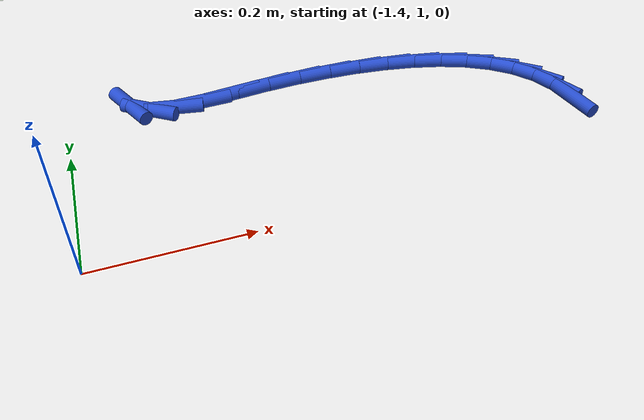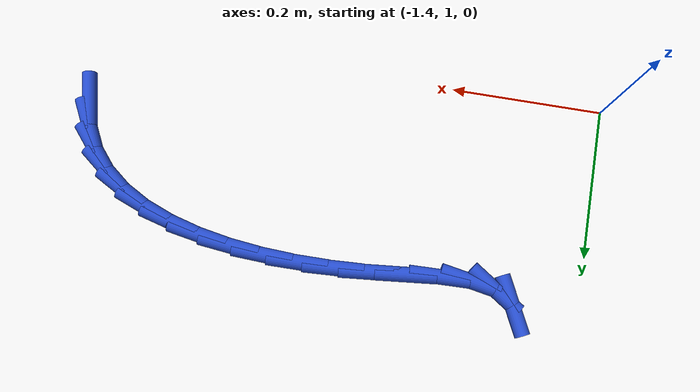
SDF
<sdf version="1.6">
 <world name="default">
  <model name="ground_plane">
   <static>1</static>
   <link name="link">
    <collision name="collision">
     <geometry><plane><normal>0 0 1</normal><size>100 100</size></plane></geometry>
     <surface><friction><ode><mu>100</mu><mu2>50</mu2></ode></friction></surface>
    </collision>
    <visual name="visual">
     <cast_shadows>0</cast_shadows>
     <geometry><plane><normal>0 0 1</normal><size>100 100</size></plane></geometry>
     <material>
      <script><uri>file://media/materials/scripts/gazebo.material</uri><name>Gazebo/WhiteGlow</name></script>
     </material>
    </visual>
   </link>
  </model>
  <model name="line">
   <link name="link_52">
    <pose>-0.7201368327279122 1.1003752268032798 0.01 0 1.57 -1.349104011074392</pose>
    <collision name="collision">
     <geometry><cylinder><radius>0.01</radius><length>0.08</length></cylinder></geometry>
    </collision>
    <visual name="visual">
     <material>
      <script><name>Gazebo/Blue</name><uri>file://media/materials/scripts/gazebo.material</uri></script>
     </material>
     <geometry><cylinder><radius>0.01</radius><length>0.08</length></cylinder></geometry>
    </visual>
   </link>
   <link name="link_53">
    <pose>-0.7278001419012158 1.1343743834724014 0.01 0 1.57 -1.106657936353359</pose>
    <collision name="collision">
     <geometry><cylinder><radius>0.01</radius><length>0.08</length></cylinder></geometry>
    </collision>
    <visual name="visual">
     <material>
      <script><name>Gazebo/Blue</name><uri>file://media/materials/scripts/gazebo.material</uri></script>
     </material>
     <geometry><cylinder><radius>0.01</radius><length>0.08</length></cylinder></geometry>
    </visual>
   </link>
   <link name="link_54">
    <pose>-0.7425952766973491 1.1639283827754703 0.01 0 1.57 -0.8736379032597319</pose>
    <collision name="collision">
     <geometry><cylinder><radius>0.01</radius><length>0.08</length></cylinder></geometry>
    </collision>
    <visual name="visual">
     <material>
      <script><name>Gazebo/Blue</name><uri>file://media/materials/scripts/gazebo.material</uri></script>
     </material>
     <geometry><cylinder><radius>0.01</radius><length>0.08</length></cylinder></geometry>
    </visual>
   </link>
   <link name="link_55">
    <pose>-0.7638103331912425 1.1892615348091882 0.01 0 1.57 -0.670152802200831</pose>
    <collision name="collision">
     <geometry><cylinder><radius>0.01</radius><length>0.08</length></cylinder></geometry>
    </collision>
    <visual name="visual">
     <material>
      <script><name>Gazebo/Blue</name><uri>file://media/materials/scripts/gazebo.material</uri></script>
     </material>
     <geometry><cylinder><radius>0.01</radius><length>0.08</length></cylinder></geometry>
    </visual>
   </link>
   <link name="link_56">
    <pose>-0.7907334074578248 1.210598149670255 0.01 0 1.57 -0.5030556786254259</pose>
    <collision name="collision">
     <geometry><cylinder><radius>0.01</radius><length>0.08</length></cylinder></geometry>
    </collision>
    <visual name="visual">
     <material>
      <script><name>Gazebo/Blue</name><uri>file://media/materials/scripts/gazebo.material</uri></script>
     </material>
     <geometry><cylinder><radius>0.01</radius><length>0.08</length></cylinder></geometry>
    </visual>
   </link>
   <link name="link_57">
    <pose>-0.8226525955720265 1.228162537455373 0.01 0 1.57 -0.3693877594784987</pose>
    <collision name="collision">
     <geometry><cylinder><radius>0.01</radius><length>0.08</length></cylinder></geometry>
    </collision>
    <visual name="visual">
     <material>
      <script><name>Gazebo/Blue</name><uri>file://media/materials/scripts/gazebo.material</uri></script>
     </material>
     <geometry><cylinder><radius>0.01</radius><length>0.08</length></cylinder></geometry>
    </visual>
   </link>
   <link name="link_58">
    <pose>-0.8588559936087773 1.242179008261243 0.01 0 1.57 -0.2626201064883704</pose>
    <collision name="collision">
     <geometry><cylinder><radius>0.01</radius><length>0.08</length></cylinder></geometry>
    </collision>
    <visual name="visual">
     <material>
      <script><name>Gazebo/Blue</name><uri>file://media/materials/scripts/gazebo.material</uri></script>
     </material>
     <geometry><cylinder><radius>0.01</radius><length>0.08</length></cylinder></geometry>
    </visual>
   </link>
   <link name="link_59">
    <pose>-0.8986316976430062 1.252871872184565 0.01 0 1.57 -0.17625370077584482</pose>
    <collision name="collision">
     <geometry><cylinder><radius>0.01</radius><length>0.08</length></cylinder></geometry>
    </collision>
    <visual name="visual">
     <material>
      <script><name>Gazebo/Blue</name><uri>file://media/materials/scripts/gazebo.material</uri></script>
     </material>
     <geometry><cylinder><radius>0.01</radius><length>0.08</length></cylinder></geometry>
    </visual>
   </link>
   <link name="link_60">
    <pose>-0.9412678037496439 1.2604654393220416 0.01 0 1.57 -0.10497436481510176</pose>
    <collision name="collision">
     <geometry><cylinder><radius>0.01</radius><length>0.08</length></cylinder></geometry>
    </collision>
    <visual name="visual">
     <material>
      <script><name>Gazebo/Blue</name><uri>file://media/materials/scripts/gazebo.material</uri></script>
     </material>
     <geometry><cylinder><radius>0.01</radius><length>0.08</length></cylinder></geometry>
    </visual>
   </link>
   <link name="link_61">
    <pose>-0.9860524080036196 1.265184019770373 0.01 0 1.57 -0.044709481147856237</pose>
    <collision name="collision">
     <geometry><cylinder><radius>0.01</radius><length>0.08</length></cylinder></geometry>
    </collision>
    <visual name="visual">
     <material>
      <script><name>Gazebo/Blue</name><uri>file://media/materials/scripts/gazebo.material</uri></script>
     </material>
     <geometry><cylinder><radius>0.01</radius><length>0.08</length></cylinder></geometry>
    </visual>
   </link>
   <link name="link_62">
    <pose>-1.0322736064798628 1.2672519236262603 0.01 0 1.57 0.007635507239381281</pose>
    <collision name="collision">
     <geometry><cylinder><radius>0.01</radius><length>0.08</length></cylinder></geometry>
    </collision>
    <visual name="visual">
     <material>
      <script><name>Gazebo/Blue</name><uri>file://media/materials/scripts/gazebo.material</uri></script>
     </material>
     <geometry><cylinder><radius>0.01</radius><length>0.08</length></cylinder></geometry>
    </visual>
   </link>
   <link name="link_63">
    <pose>-1.0792194952533036 1.2668934609864044 0.01 0 1.57 0.05447312774394662</pose>
    <collision name="collision">
     <geometry><cylinder><radius>0.01</radius><length>0.08</length></cylinder></geometry>
    </collision>
    <visual name="visual">
     <material>
      <script><name>Gazebo/Blue</name><uri>file://media/materials/scripts/gazebo.material</uri></script>
     </material>
     <geometry><cylinder><radius>0.01</radius><length>0.08</length></cylinder></geometry>
    </visual>
   </link>
   <link name="link_64">
    <pose>-1.126178170398872 1.2643329419475071 0.01 0 1.57 0.09641894953253058</pose>
    <collision name="collision">
     <geometry><cylinder><radius>0.01</radius><length>0.08</length></cylinder></geometry>
    </collision>
    <visual name="visual">
     <material>
      <script><name>Gazebo/Blue</name><uri>file://media/materials/scripts/gazebo.material</uri></script>
     </material>
     <geometry><cylinder><radius>0.01</radius><length>0.08</length></cylinder></geometry>
    </visual>
   </link>
   <link name="link_65">
    <pose>-1.1724070931663644 1.259861733481744 0.01 0 1.57 0.10208965063162351</pose>
    <collision name="collision">
     <geometry><cylinder><radius>0.01</radius><length>0.08</length></cylinder></geometry>
    </collision>
    <visual name="visual">
     <material>
      <script><name>Gazebo/Blue</name><uri>file://media/materials/scripts/gazebo.material</uri></script>
     </material>
     <geometry><cylinder><radius>0.01</radius><length>0.08</length></cylinder></geometry>
    </visual>
   </link>
   <link name="link_66">
    <pose>-1.2164422162572017 1.2553505198471393 0.01 0 1.57 0.02724372632855227</pose>
    <collision name="collision">
     <geometry><cylinder><radius>0.01</radius><length>0.08</length></cylinder></geometry>
    </collision>
    <visual name="visual">
     <material>
      <script><name>Gazebo/Blue</name><uri>file://media/materials/scripts/gazebo.material</uri></script>
     </material>
     <geometry><cylinder><radius>0.01</radius><length>0.08</length></cylinder></geometry>
    </visual>
   </link>
   <link name="link_67">
    <pose>-1.2560884638192504 1.2542701410222292 0.01 0 1.57 -0.17654307387412205</pose>
    <collision name="collision">
     <geometry><cylinder><radius>0.01</radius><length>0.08</length></cylinder></geometry>
    </collision>
    <visual name="visual">
     <material>
      <script><name>Gazebo/Blue</name><uri>file://media/materials/scripts/gazebo.material</uri></script>
     </material>
     <geometry><cylinder><radius>0.01</radius><length>0.08</length></cylinder></geometry>
    </visual>
   </link>
   <link name="link_68">
    <pose>-1.289118221071649 1.2601626617724484 0.01 0 1.57 -0.5960800152873245</pose>
    <collision name="collision">
     <geometry><cylinder><radius>0.01</radius><length>0.08</length></cylinder></geometry>
    </collision>
    <visual name="visual">
     <material>
      <script><name>Gazebo/Blue</name><uri>file://media/materials/scripts/gazebo.material</uri></script>
     </material>
     <geometry><cylinder><radius>0.01</radius><length>0.08</length></cylinder></geometry>
    </visual>
   </link>
   <link name="link_69">
    <pose>-1.3133038732335354 1.2765701468632322 0.01 0 1.57 -1.1235835575818764</pose>
    <collision name="collision">
     <geometry><cylinder><radius>0.01</radius><length>0.08</length></cylinder></geometry>
    </collision>
    <visual name="visual">
     <material>
      <script><name>Gazebo/Blue</name><uri>file://media/materials/scripts/gazebo.material</uri></script>
     </material>
     <geometry><cylinder><radius>0.01</radius><length>0.08</length></cylinder></geometry>
    </visual>
   </link>
  </model>
 </world>
</sdf>
